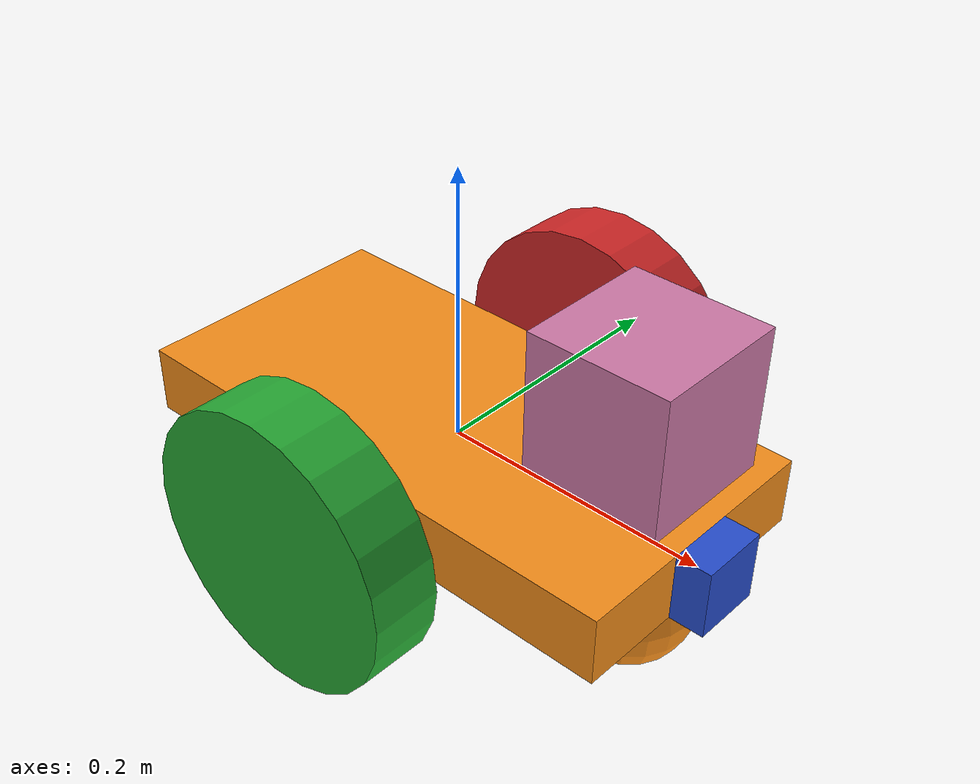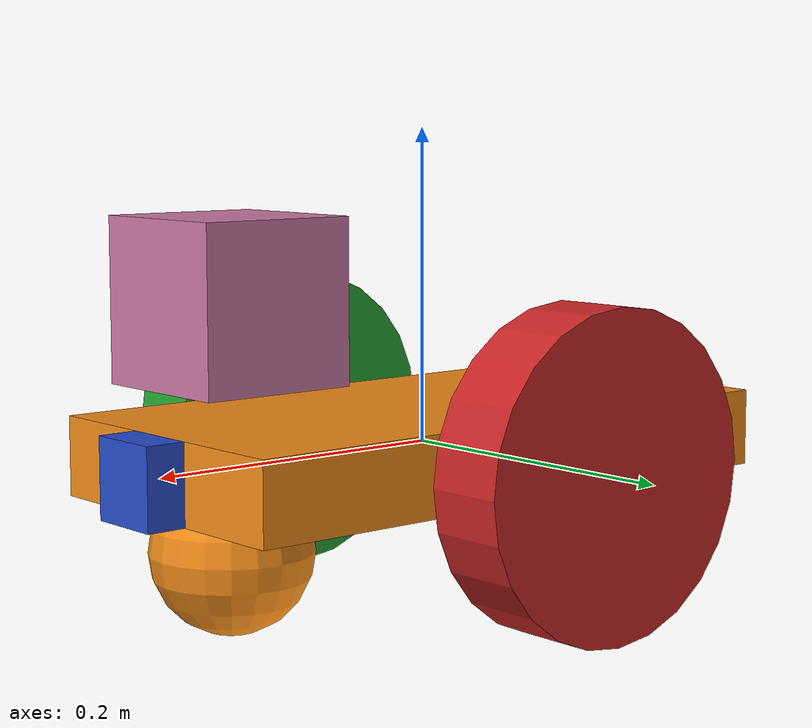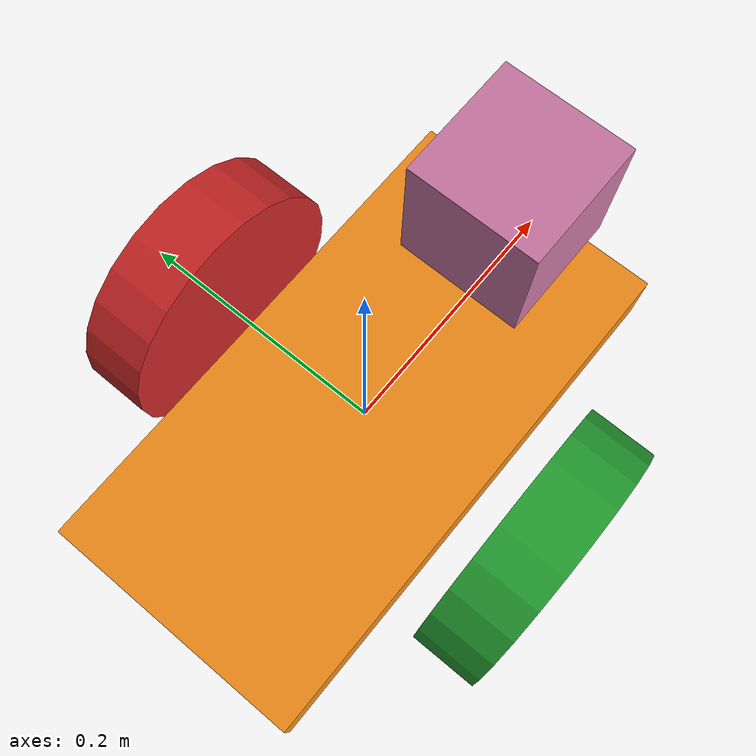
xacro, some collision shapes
<?xml version='1.0'?>

<robot name="my_robot" xmlns:xacro="http://www.ros.org/wiki/xacro">

<xacro:include filename="$(find my_robot)/urdf/my_robot.gazebo" />

  <link name="robot_footprint"></link>

  <joint name="robot_footprint_joint" type="fixed">
    <origin xyz="0 0 0" rpy="0 0 0" />
    <parent link="robot_footprint"/>
    <child link="chassis" />
  </joint>

  <link name='chassis'>
    <pose>0 0 0.1 0 0 0</pose>

    <inertial>
      <mass value="15.0"/>
      <origin xyz="0.0 0 0" rpy=" 0 0 0"/>
      <inertia
          ixx="0.1" ixy="0" ixz="0"
          iyy="0.1" iyz="0"
          izz="0.1"
      />
    </inertial>

    <collision name='collision'>
      <origin xyz="0 0 0" rpy=" 0 0 0"/>
      <geometry>
        <box size=".4 .2 .05"/>
      </geometry>
    </collision>

    <visual name='chassis_visual'>
      <origin xyz="0 0 0" rpy=" 0 0 0"/>
      <geometry>
        <box size=".4 .2 .05"/>
      </geometry>
    </visual>

    <collision name='back_caster_collision'>
      <origin xyz="-0.15 0 -0.05" rpy=" 0 0 0"/>
      <geometry>
        <sphere radius="0.0499"/>
      </geometry>
    </collision>

    <visual name='back_caster_visual'>
      <origin xyz="-0.15 0 -0.05" rpy=" 0 0 0"/>
      <geometry>
        <sphere radius="0.05"/>
      </geometry>
    </visual>

    <collision name='front_caster_collision'>
      <origin xyz="0.15 0 -0.05" rpy=" 0 0 0"/>
      <geometry>
        <sphere radius="0.0499"/>
      </geometry>
    </collision>

    <visual name='front_caster_visual'>
      <origin xyz="0.15 0 -0.05" rpy=" 0 0 0"/>
      <geometry>
        <sphere radius="0.05"/>
      </geometry>
    </visual>
  </link>

	<link name="link_right_wheel">
	  <inertial>
			<mass value="5"/>
			<origin xyz="0 0 0" rpy="0 1.5707 1.5707"/>
			<inertia
				ixx="0.1" ixy="0" ixz="0"
		  		iyy="0.1" iyz="0"
		 		izz="0.1"
		 	/>
	  </inertial>

	  <collision name="link_right_wheel_collision">
			<origin xyz="0 0 0" rpy="0 1.5707 1.5707"/>
			<geometry>
				<cylinder length="0.05" radius="0.1"/>
			</geometry>
	  </collision>

	  <visual name="link_right_wheel_visual">
			<origin xyz="0 0 0" rpy="0 1.5707 1.5707"/>
			<geometry>
		  		<cylinder length="0.05" radius="0.1"/>
			</geometry>
	  </visual>
  </link>

	<link name="link_left_wheel">
	  <inertial>
			<mass value="5"/>
			<origin xyz="0 0 0" rpy="0 1.5707 1.5707"/>
			<inertia
				ixx="0.1" ixy="0" ixz="0"
		  		iyy="0.1" iyz="0"
		 		izz="0.1"
		 	/>
	  </inertial>

	  <collision name="link_left_wheel_collision">
			<origin xyz="0 0 0" rpy="0 1.5707 1.5707"/>
			<geometry>
				<cylinder length="0.05" radius="0.1"/>
			</geometry>
	  </collision>

	  <visual name="link_left_wheel_visual">
			<origin xyz="0 0 0" rpy="0 1.5707 1.5707"/>
			<geometry>
		  		<cylinder length="0.05" radius="0.1"/>
			</geometry>
	  </visual>
  </link>

  <joint type="continuous" name="left_wheel_hinge">
    <origin xyz="0 0.15 0" rpy="0 0 0"/>
    <child link="link_left_wheel"/>
    <parent link="chassis"/>
    <axis xyz="0 1 0" rpy="0 0 0"/>
    <limit effort="10000" velocity="1000"/>
    <dynamics damping="1.0" friction="1.0"/>
  </joint>

   <joint type="continuous" name="right_wheel_hinge">
    <origin xyz="0 -0.15 0" rpy="0 0 0"/>
    <child link="link_right_wheel"/>
    <parent link="chassis"/>
    <axis xyz="0 1 0" rpy="0 0 0"/>
    <limit effort="10000" velocity="1000"/>
    <dynamics damping="1.0" friction="1.0"/>
  </joint>

 	<link name="camera">
	  <inertial>
			<mass value="0.1"/>
			<origin xyz="0 0 0" rpy="0 0 0"/>
			<inertia
				ixx="1e-6" ixy="0" ixz="0"
		  		iyy="1e-6" iyz="0"
		 		izz="1e-6"
		 	/>
	  </inertial>

	  <collision name="camera_collision">
			<origin xyz="0 0 0" rpy="0 0 0"/>
			<geometry>
				<box size="0.05 0.05 0.05"/>
			</geometry>
	  </collision>

	  <visual name="camera_visual">
			<origin xyz="0 0 0" rpy="0 0 0"/>
			<geometry>
				<box size="0.05 0.05 0.05"/>
			</geometry>
	  </visual>
  </link>

   <joint type="fixed" name="camera_joint">
    <origin xyz="0.2 0 0" rpy="0 0 0"/>
    <child link="camera"/>
    <parent link="chassis"/>
    <axis xyz="0 1 0"/>
  </joint>

    <joint name="camera_optical_joint" type="fixed">
    <origin xyz="0.25 0 0" rpy="-1.5707 0 -1.5707"/>
    <parent link="camera"/>
    <child link="camera_link_optical"/>
  </joint>
  <link name="camera_link_optical">
  </link>

 	<link name="hokuyo">
	  <inertial>
			<mass value="1e-5"/>
			<origin xyz="0 0 0" rpy="0 0 0"/>
			<inertia
				ixx="1e-6" ixy="0" ixz="0"
		  		iyy="1e-6" iyz="0"
		 		izz="1e-6"
		 	/>
	  </inertial>

	  <collision name="hokuyo_collision">
			<origin xyz="0 0 0" rpy="0 0 0"/>
			<geometry>
				<box size="0.1 0.1 0.1"/>
			</geometry>
	  </collision>

	  <visual name="hokuyo_visual">
			<origin xyz="0 0 0" rpy="0 0 0"/>
			<geometry>
				<mesh filename="package://my_robot/meshes/hokuyo.dae"/>
			</geometry>
	  </visual>
  </link>

     <joint type="fixed" name="hokuyo_joint">
    <origin xyz="0.15 0 0.1" rpy="0 0 0"/>
    <child link="hokuyo"/>
    <parent link="chassis"/>
    <axis xyz="0 1 0"/>
  </joint>

  <gazebo reference="link_left_wheel">
    <material>Gazebo/Red</material>
</gazebo>

  <gazebo reference="link_right_wheel">
    <material>Gazebo/Green</material>
</gazebo>

    <gazebo reference="camera">
    <material>Gazebo/Blue</material>
</gazebo>

  <gazebo reference="chassis">
    <material>Gazebo/Orange</material>
</gazebo>

</robot>
